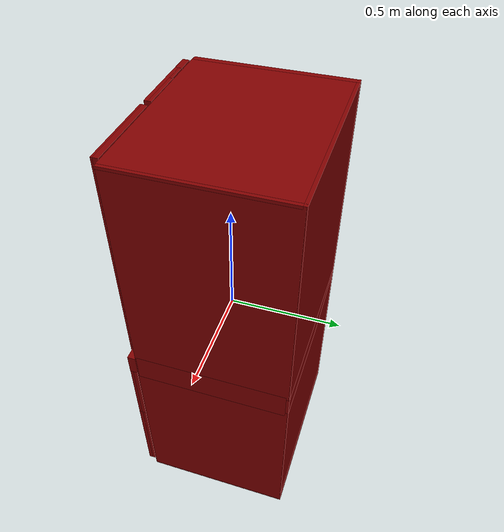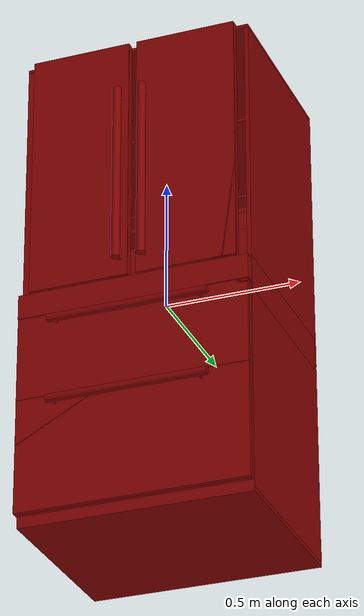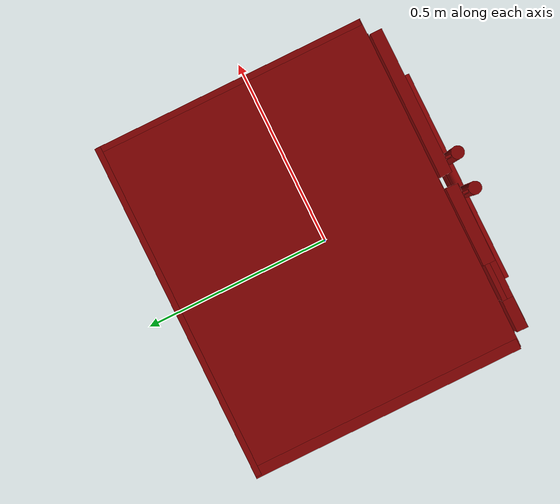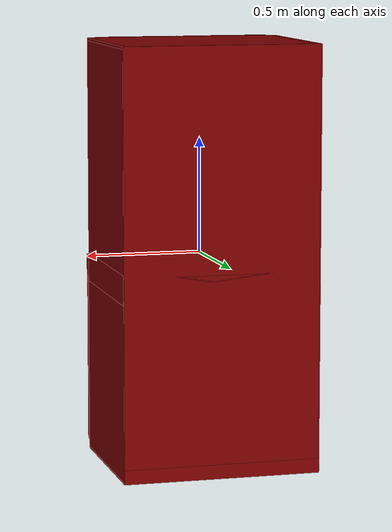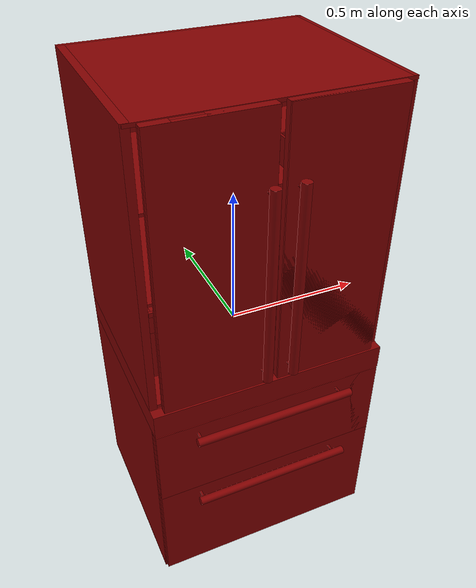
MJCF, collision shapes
<?xml version='1.0' encoding='UTF-8'?>
<mujoco model="model">
  <option timestep="0.002" gravity="0.0 0.0 -9.81"/>
  <compiler angle="radian"/>
  <asset>
    <mesh file="visuals/freezer0.obj" name="freezer0_vis"/>
    <mesh file="visuals/freezer1.obj" name="freezer1_vis"/>
    <mesh file="visuals/fridge_drawer0.obj" name="fridge_drawer0_vis"/>
    <mesh file="visuals/fridge_left_door.obj" name="fridge_left_door_vis"/>
    <mesh file="visuals/fridge_left_door_Clear.obj" name="fridge_left_door_Clear_vis"/>
    <mesh file="visuals/fridge_right_door.obj" name="fridge_right_door_vis"/>
    <mesh file="visuals/fridge_right_door_Clear.obj" name="fridge_right_door_Clear_vis"/>
    <mesh file="visuals/Body001.obj" name="Body001_vis"/>
    <mesh file="visuals/Body001_Clear.obj" name="Body001_Clear_vis"/>
    <texture file="visuals/T_BC001.png" name="Body001_material" type="2d"/>
    <material name="Body001_material" rgba="1 1 1 1.0" texture="Body001_material" shininess="0.8276031911373138" specular="0.5"/>
    <texture file="visuals/T_BC001.png" name="freezer0_material" type="2d"/>
    <material name="freezer0_material" rgba="1 1 1 1.0" texture="freezer0_material" shininess="0.8276031911373138" specular="0.3103448502657381"/>
    <texture file="visuals/T_BC001.png" name="freezer1_material" type="2d"/>
    <material name="freezer1_material" rgba="1 1 1 1.0" texture="freezer1_material" shininess="0.8276031911373138" specular="0.3103448502657381"/>
    <texture file="visuals/T_BC001.png" name="fridge_drawer0_material" type="2d"/>
    <material name="fridge_drawer0_material" rgba="1 1 1 1.0" texture="fridge_drawer0_material" shininess="0.8276031911373138" specular="0.3103448502657381"/>
    <texture file="visuals/T_BC001.png" name="fridge_left_door_material" type="2d"/>
    <material name="fridge_left_door_material" rgba="1 1 1 1.0" texture="fridge_left_door_material" shininess="0.8276031911373138" specular="0.5"/>
    <texture file="visuals/T_BC001.png" name="fridge_left_door_Clear_material" type="2d"/>
    <material name="fridge_left_door_Clear_material" rgba="1 1 1 0.2879999876022339" texture="fridge_left_door_Clear_material" shininess="0.5" specular="0.3103448502657381"/>
    <texture file="visuals/T_BC001.png" name="fridge_right_door_material" type="2d"/>
    <material name="fridge_right_door_material" rgba="1 1 1 1.0" texture="fridge_right_door_material" shininess="0.8276031911373138" specular="0.5"/>
    <texture file="visuals/T_BC001.png" name="fridge_right_door_Clear_material" type="2d"/>
    <material name="fridge_right_door_Clear_material" rgba="1 1 1 0.2879999876022339" texture="fridge_right_door_Clear_material" shininess="0.5" specular="0.3103448502657381"/>
    <texture file="visuals/T_BC001.png" name="Body001_Clear_material" type="2d"/>
    <material name="Body001_Clear_material" rgba="1 1 1 0.2879999876022339" texture="Body001_Clear_material" shininess="0.5" specular="0.3103448502657381"/>
  </asset>
  <default>
    <default class="visual">
      <geom conaffinity="0" contype="0" group="1" type="mesh"/>
    </default>
    <default class="collision">
      <geom group="0" rgba="0.5 0 0 0.5"/>
    </default>
    <default class="spawn">
      <geom group="0" rgba="1 1 1 0.5" contype="0" conaffinity="0"/>
      <site group="0" rgba="1 1 1 0.5"/>
    </default>
    <default class="region">
      <geom group="1" conaffinity="0" contype="0" rgba="0 1 0 0"/>
    </default>
  </default>
  <worldbody>
    <body>
      <body name="object">
        <geom mesh="Body001_vis" type="mesh" solimp="0.998 0.998 0.001" solref="0.001 1" friction="0.95 0.3 0.1" class="visual" material="Body001_material"/>
        <geom class="collision" type="box" pos="0.00209404 0.38322134 0.01577243" size="0.4255010485649109 0.007235266733914614 0.902708888053894" quat="1.0 0.0 0.0 0.0"/>
        <geom class="collision" type="box" pos="-0.41488200 0.04720822 0.00317960" size="0.013278201222419739 0.3432483673095703 0.9153016209602356" quat="1.0 0.0 0.0 0.0"/>
        <geom class="collision" type="box" pos="0.42073298 0.04515436 0.00316708" size="0.007427399978041649 0.3413979113101959 0.9153141975402832" quat="1.0 0.0 0.0 0.0"/>
        <geom class="collision" type="box" pos="0.00234738 0.03892795 0.91263694" size="0.42582303285598755 0.33744537830352783 0.005843969993293285" quat="1.0 0.0 0.0 0.0"/>
        <geom class="collision" type="box" pos="0.00851423 0.09890911 0.59902085" size="0.41042831540107727 0.2774127125740051 0.005448679439723492" quat="1.0 0.0 0.0 0.0"/>
        <geom class="collision" type="box" pos="0.00774531 0.09890905 0.28247998" size="0.41171011328697205 0.2774127423763275 0.0054486095905303955" quat="1.0 0.0 0.0 0.0"/>
        <geom class="collision" type="box" pos="0.00235057 0.04184989 -0.09310286" size="0.42581942677497864 0.33451831340789795 0.0636359453201294" quat="1.0 0.0 0.0 0.0"/>
        <geom class="collision" type="box" pos="0.00000013 0.02839998 -0.08866017" size="0.42816030979156494 0.3620566725730896 0.04623980447649956" quat="1.0 0.0 0.0 0.0"/>
        <geom class="collision" type="box" pos="-0.38684493 0.03445360 -0.25785556" size="0.021264592185616493 0.27595773339271545 0.004595370031893253" quat="1.0 0.0 0.0 0.0"/>
        <geom class="collision" type="box" pos="-0.38684493 0.03445358 -0.58969050" size="0.021264592185616493 0.2759576141834259 0.004595387261360884" quat="1.0 0.0 0.0 0.0"/>
        <geom class="collision" type="box" pos="0.39255250 0.03445357 -0.25785556" size="0.021264592185616493 0.27595749497413635 0.004595404025167227" quat="1.0 0.0 0.0 0.0"/>
        <geom class="collision" type="box" pos="0.39255250 0.03445360 -0.58946180" size="0.021264592185616493 0.2759574055671692 0.004824158735573292" quat="1.0 0.0 0.0 0.0"/>
        <geom class="collision" type="box" pos="0.00021380 0.04666487 -0.88714420" size="0.42794644832611084 0.3437919020652771 0.031325992196798325" quat="1.0 0.0 0.0 0.0"/>
        <geom class="collision" type="box" pos="0.00235609 0.03961269 -0.08866007" size="0.4258127808570862 0.3367463946342468 0.04624028876423836" quat="1.0 0.0 0.0 0.0"/>
        <body name="freezer0">
          <geom class="region" name="reg_freezer0" type="box" pos="0.0019675949999999887 0.03400876500000001 -0.669905175" size="0.291497585 0.27770337500000003 0.117826235"/>
          <joint axis="0.0 -1.0 0.0" pos="0.00013149 -0.02167906 -0.66472196" limited="true" name="freezer0_door_joint" range="0.0 0.5" type="slide" damping="1" frictionloss="1" armature=".01" stiffness="0.05"/>
          <geom mesh="freezer0_vis" type="mesh" solimp="0.998 0.998 0.001" solref="0.001 1" friction="0.95 0.3 0.1" class="visual" material="freezer0_material"/>
          <geom class="collision" type="box" pos="0.00007205 -0.31786283 -0.66655325" size="0.4266375005245209 0.01579381711781025 0.21225886046886444" quat="1.0 0.0 0.0 0.0"/>
          <geom class="collision" type="box" pos="0.00139456 -0.28475057 -0.67201941" size="0.3763910233974457 0.00999400857836008 0.17610913515090942" quat="1.0 0.0 0.0 0.0"/>
          <geom class="collision" type="box" pos="0.00214589 0.33212675 -0.68471061" size="0.32801109552383423 0.012254095636308193 0.138435959815979" quat="1.0 0.0 0.0 0.0"/>
          <geom class="collision" type="box" pos="-0.33073261 0.03453123 -0.56307279" size="0.032920826226472855 0.3103441298007965 0.01619304157793522" quat="1.0 0.0 0.0 0.0"/>
          <geom class="collision" type="box" pos="0.33386949 0.03453123 -0.56307285" size="0.033328983932733536 0.3103441298007965 0.016192829236388206" quat="1.0 0.0 0.0 0.0"/>
          <geom class="collision" type="box" pos="0.32493401 0.03453122 -0.68691426" size="0.023701008409261703 0.3103441298007965 0.10926515609025955" quat="1.0 0.0 0.0 0.0"/>
          <geom class="collision" type="box" pos="-0.32092553 0.03453122 -0.67684894" size="0.02445262484252453 0.3103441298007965 0.11980981379747391" quat="1.0 0.0 0.0 0.0"/>
          <geom class="collision" type="box" pos="-0.02193163 -0.26317882 -0.67248487" size="0.32325467467308044 0.0122462073341012 0.14743882417678833" quat="1.0 0.0 0.0 0.0"/>
          <geom class="collision" type="box" pos="0.00149272 0.03390422 -0.80943846" size="0.32814446091651917 0.3104744255542755 0.013698695227503777" quat="1.0 0.0 0.0 0.0"/>
          <geom class="collision" type="cylinder" pos="-0.00160723 -0.37345754 -0.48580470" size="0.014763685874640942 0.2946333885192871" quat="0.7071068286895752 -0.0 0.7071067690849304 0.0" name="freezer0_door_handle_main"/>
          <geom class="collision" type="cylinder" pos="-0.27833098 -0.34790211 -0.48769971" size="0.004080971237272024 0.014836380258202553" quat="0.7071068286895752 0.7071067690849304 0.0 0.0" name="freezer0_door_handle_1"/>
          <geom class="collision" type="cylinder" pos="0.25619841 -0.34812783 -0.48786145" size="0.004080971237272024 0.014836380258202553" quat="0.7071068286895752 0.7071067690849304 0.0 0.0" name="freezer0_door_handle_2"/>
          <geom class="collision" type="box" pos="0.00007205 -0.32529076 -0.66655325" size="0.4266432821750641 0.00836600549519062 0.21226069331169128" quat="1.0 0.0 0.0 0.0" name="freezer0_door_main"/>
        </body>
        <body name="freezer1">
          <geom class="region" name="reg_freezer1" type="box" pos="0.0019675949999999887 0.03400876500000001 -0.30439927499999997" size="0.291497585 0.27770337500000003 0.083944455"/>
          <joint axis="0.0 -1.0 0.0" pos="0.00013132 -0.02167906 -0.29443761" limited="true" name="freezer1_door_joint" range="0.0 0.5" type="slide" damping="1" frictionloss="1" armature=".01" stiffness="0.05"/>
          <geom mesh="freezer1_vis" type="mesh" solimp="0.998 0.998 0.001" solref="0.001 1" friction="0.95 0.3 0.1" class="visual" material="freezer1_material"/>
          <geom class="collision" type="box" pos="-0.00005701 -0.31786253 -0.29567125" size="0.4268110394477844 0.015794236212968826 0.15702089667320251" quat="1.0 0.0 0.0 0.0"/>
          <geom class="collision" type="box" pos="0.00139456 -0.28475057 -0.30014598" size="0.3763910233974457 0.00999400857836008 0.1337537169456482" quat="1.0 0.0 0.0 0.0"/>
          <geom class="collision" type="box" pos="-0.02193163 0.33212669 -0.30647644" size="0.32325467467308044 0.012254060246050358 0.09206433594226837" quat="1.0 0.0 0.0 0.0"/>
          <geom class="collision" type="box" pos="-0.33073273 0.03453123 -0.23133355" size="0.03292093798518181 0.3103441298007965 0.016193004325032234" quat="1.0 0.0 0.0 0.0"/>
          <geom class="collision" type="box" pos="0.33386940 0.03453123 -0.23133346" size="0.03332890570163727 0.3103441298007965 0.016192786395549774" quat="1.0 0.0 0.0 0.0"/>
          <geom class="collision" type="box" pos="0.32494429 0.03453122 -0.32260495" size="0.02347595803439617 0.3103441298007965 0.0761997401714325" quat="1.0 0.0 0.0 0.0"/>
          <geom class="collision" type="box" pos="-0.32164931 0.03453122 -0.32252955" size="0.023728851228952408 0.3103441298007965 0.07612433284521103" quat="1.0 0.0 0.0 0.0"/>
          <geom class="collision" type="box" pos="-0.02193163 -0.26317882 -0.30647644" size="0.32325467467308044 0.0122462073341012 0.09206433594226837" quat="1.0 0.0 0.0 0.0"/>
          <geom class="collision" type="box" pos="0.00154104 0.03390757 -0.41048028" size="0.32808899879455566 0.31047046184539795 0.014378750696778297" quat="1.0 0.0 0.0 0.0"/>
          <geom class="collision" type="cylinder" pos="-0.27833098 -0.34789019 -0.17486479" size="0.004080971237272024 0.014836380258202553" quat="0.7071068286895752 0.7071067690849304 0.0 0.0" name="freezer1_door_handle_1"/>
          <geom class="collision" type="cylinder" pos="0.25619841 -0.34796079 -0.17486479" size="0.004080971237272024 0.014836380258202553" quat="0.7071068286895752 0.7071067690849304 0.0 0.0" name="freezer1_door_handle_2"/>
          <geom class="collision" type="cylinder" pos="-0.00160723 -0.37345754 -0.17529262" size="0.014763685874640942 0.2946333885192871" quat="0.7071068286895752 -0.0 0.7071067690849304 0.0" name="freezer1_door_handle_main"/>
          <geom class="collision" type="box" pos="-0.00005701 -0.32725378 -0.29567125" size="0.42681798338890076 0.006402987986803055 0.1570231318473816" quat="1.0 0.0 0.0 0.0" name="freezer1_door_main"/>
        </body>
        <body name="fridge_drawer0">
          <geom class="region" name="reg_fridge_drawer0" type="box" pos="0.013046130000000017 0.10200007 0.111323845" size="0.36215644999999996 0.24400423 0.12311760499999999"/>
          <joint axis="0.0 -1.0 0.0" pos="0.01215402 0.09903535 0.10784212" limited="true" name="fridge_drawer0_joint" range="0.0 0.5" type="slide" damping="1" frictionloss="1" armature=".01" stiffness="0.05"/>
          <geom mesh="fridge_drawer0_vis" type="mesh" solimp="0.998 0.998 0.001" solref="0.001 1" friction="0.95 0.3 0.1" class="visual" material="fridge_drawer0_material"/>
          <geom class="collision" type="box" pos="0.36099902 -0.16096665 0.19847540" size="0.030655866488814354 0.004229236394166946 0.04130983352661133" quat="1.0 0.0 0.0 0.0"/>
          <geom class="collision" type="box" pos="-0.33496001 -0.16096662 0.19847540" size="0.03326001018285751 0.004229261539876461 0.04130994528532028" quat="1.0 0.0 0.0 0.0"/>
          <geom class="collision" type="box" pos="0.01171760 -0.16096665 0.06714342" size="0.3795023560523987 0.004229259677231312 0.09351187944412231" quat="1.0 0.0 0.0 0.0"/>
          <geom class="collision" type="box" pos="0.01279364 -0.16174074 0.23408661" size="0.3787553012371063 0.005003170110285282 0.00878092460334301" quat="1.0 0.0 0.0 0.0"/>
          <geom class="collision" type="box" pos="-0.36247855 0.10367085 0.10938761" size="0.005487510468810797 0.26028087735176086 0.13347309827804565" quat="1.0 0.0 0.0 0.0"/>
          <geom class="collision" type="box" pos="0.38753429 0.10298224 0.10938761" size="0.004412728827446699 0.2601720988750458 0.1334730088710785" quat="1.0 0.0 0.0 0.0"/>
          <geom class="collision" type="box" pos="0.01160441 0.10286673 -0.02255329" size="0.37965017557144165 0.25998014211654663 0.004402667284011841" quat="1.0 0.0 0.0 0.0"/>
          <geom class="collision" type="box" pos="0.01333409 0.35958890 0.10835097" size="0.3792940378189087 0.0046245441772043705 0.13243620097637177" quat="1.0 0.0 0.0 0.0"/>
        </body>
        <body name="fridge_left_door">
          <joint axis="0.0 0.0 -1.0" pos="-0.40841827 -0.31647562 0.48872218" limited="true" name="fridge_left_door_joint" range="0.0 1.5707963267948966" type="hinge" damping="1" frictionloss="1" armature=".01" stiffness="0.05"/>
          <geom mesh="fridge_left_door_vis" type="mesh" solimp="0.998 0.998 0.001" solref="0.001 1" friction="0.95 0.3 0.1" class="visual" material="fridge_left_door_material"/>
          <geom class="collision" type="box" pos="-0.34973997 -0.31935235 0.44184566" size="0.039864156395196915 0.014084827154874802 0.47649359703063965" quat="1.0 0.0 0.0 0.0"/>
          <geom class="collision" type="box" pos="-0.11627309 -0.31819220 0.44190476" size="0.10008827596902847 0.015244950540363789 0.4764341711997986" quat="1.0 0.0 0.0 0.0"/>
          <geom class="collision" type="box" pos="-0.26371098 -0.31782960 0.22559942" size="0.04796658828854561 0.015605823136866093 0.2602473497390747" quat="1.0 0.0 0.0 0.0"/>
          <geom class="collision" type="box" pos="-0.26371098 -0.31543617 0.70232726" size="0.04796670749783516 0.009254158474504948 0.21574071049690247" quat="1.0 0.0 0.0 0.0"/>
          <geom class="collision" type="cylinder" pos="-0.04533842 -0.37464397 0.36213148" size="0.016492286697030067 0.3457251191139221" quat="1.0 0.0 0.0 0.0" name="fridge_left_door_handle_main"/>
          <geom class="collision" type="cylinder" pos="-0.04523656 -0.34812202 0.67868704" size="0.004023279063403606 0.015247500501573086" quat="0.7071068286895752 0.7071067690849304 0.0 0.0" name="fridge_left_door_handle_1"/>
          <geom class="collision" type="cylinder" pos="-0.04523656 -0.34812202 0.02836289" size="0.004023279063403606 0.015247500501573086" quat="0.7071068286895752 0.7071067690849304 0.0 0.0" name="fridge_left_door_handle_2"/>
          <geom class="collision" type="box" pos="-0.34478024 -0.24124837 0.35693718" size="0.0033341876696795225 0.0558089017868042 0.0454571507871151" quat="1.0 0.0 0.0 0.0"/>
          <geom class="collision" type="box" pos="-0.20288655 -0.18605538 0.72629643" size="0.14040397107601166 0.003358282148838043 0.04427378997206688" quat="1.0 0.0 0.0 0.0"/>
          <geom class="collision" type="box" pos="-0.20288633 -0.29650440 0.72015799" size="0.14043399691581726 0.001194413285702467 0.04829682037234306" quat="1.0 0.0 0.0 0.0"/>
          <geom class="collision" type="box" pos="-0.06261712 -0.24093748 0.72629631" size="0.003761481959372759 0.055808428674936295 0.044276535511016846" quat="1.0 0.0 0.0 0.0"/>
          <geom class="collision" type="box" pos="-0.34515199 -0.24124837 0.72629631" size="0.003705924842506647 0.05580850690603256 0.04427661746740341" quat="1.0 0.0 0.0 0.0"/>
          <geom class="collision" type="box" pos="-0.20288657 -0.24163461 0.30997474" size="0.14043420553207397 0.05600184574723244 0.0028280571568757296" quat="1.0 0.0 0.0 0.0"/>
          <geom class="collision" type="box" pos="-0.20288631 -0.18605538 0.35693712" size="0.14040951430797577 0.003358383197337389 0.04545513167977333" quat="1.0 0.0 0.0 0.0"/>
          <geom class="collision" type="box" pos="-0.20288657 -0.29650440 0.35977031" size="0.1404343545436859 0.0011944229481741786 0.04829598218202591" quat="1.0 0.0 0.0 0.0"/>
          <geom class="collision" type="box" pos="-0.20288633 -0.24163458 0.68051446" size="0.140432670712471 0.0560014583170414 0.0028280692640691996" quat="1.0 0.0 0.0 0.0"/>
          <geom class="collision" type="box" pos="-0.06261712 -0.24093748 0.35693718" size="0.0037614996545016766 0.05580882355570793 0.04545747488737106" quat="1.0 0.0 0.0 0.0"/>
          <geom class="collision" type="box" pos="-0.20331898 -0.32637169 0.44190476" size="0.18657821416854858 0.007857249118387699 0.4764341711997986" quat="1.0 0.0 0.0 0.0" name="fridge_left_door_main"/>
          <body name="fridge_left_door_Clear">
            <geom mesh="fridge_left_door_Clear_vis" type="mesh" solimp="0.998 0.998 0.001" solref="0.001 1" friction="0.95 0.3 0.1" class="visual" material="fridge_left_door_Clear_material"/>
            <geom class="collision" type="box" pos="-0.34478024 -0.24124837 0.35693718" size="0.0033341876696795225 0.0558089017868042 0.0454571507871151" quat="1.0 0.0 0.0 0.0"/>
            <geom class="collision" type="box" pos="-0.20288655 -0.18605538 0.72629643" size="0.14040397107601166 0.003358282148838043 0.04427378997206688" quat="1.0 0.0 0.0 0.0"/>
            <geom class="collision" type="box" pos="-0.20288633 -0.29650440 0.72015799" size="0.14043399691581726 0.001194413285702467 0.04829682037234306" quat="1.0 0.0 0.0 0.0"/>
            <geom class="collision" type="box" pos="-0.06261712 -0.24093748 0.72629631" size="0.003761481959372759 0.055808428674936295 0.044276535511016846" quat="1.0 0.0 0.0 0.0"/>
            <geom class="collision" type="box" pos="-0.34515199 -0.24124837 0.72629631" size="0.003705924842506647 0.05580850690603256 0.04427661746740341" quat="1.0 0.0 0.0 0.0"/>
            <geom class="collision" type="box" pos="-0.20288657 -0.24163461 0.30997474" size="0.14043420553207397 0.05600184574723244 0.0028280571568757296" quat="1.0 0.0 0.0 0.0"/>
            <geom class="collision" type="box" pos="-0.20288631 -0.18605538 0.35693712" size="0.14040951430797577 0.003358383197337389 0.04545513167977333" quat="1.0 0.0 0.0 0.0"/>
            <geom class="collision" type="box" pos="-0.20288657 -0.29650440 0.35977031" size="0.1404343545436859 0.0011944229481741786 0.04829598218202591" quat="1.0 0.0 0.0 0.0"/>
            <geom class="collision" type="box" pos="-0.20288633 -0.24163458 0.68051446" size="0.140432670712471 0.0560014583170414 0.0028280692640691996" quat="1.0 0.0 0.0 0.0"/>
            <geom class="collision" type="box" pos="-0.06261712 -0.24093748 0.35693718" size="0.0037614996545016766 0.05580882355570793 0.04545747488737106" quat="1.0 0.0 0.0 0.0"/>
          </body>
        </body>
        <body name="fridge_right_door">
          <joint axis="0.0 0.0 1.0" pos="0.40970930 -0.31647562 0.48872218" limited="true" name="fridge_right_door_joint" range="0.0 1.5707963267948966" type="hinge" damping="1" frictionloss="1" armature=".01" stiffness="0.05"/>
          <geom mesh="fridge_right_door_vis" type="mesh" solimp="0.998 0.998 0.001" solref="0.001 1" friction="0.95 0.3 0.1" class="visual" material="fridge_right_door_material"/>
          <geom class="collision" type="cylinder" pos="0.04875666 -0.37473979 0.36213145" size="0.01653287559747696 0.3464663028717041" quat="1.0 0.0 0.0 0.0" name="fridge_right_door_handle_main"/>
          <geom class="collision" type="cylinder" pos="0.04885852 -0.34812202 0.67889345" size="0.004023279063403606 0.015247500501573086" quat="0.7071068286895752 0.7071067690849304 0.0 0.0" name="fridge_right_door_handle_1"/>
          <geom class="collision" type="cylinder" pos="0.04861910 -0.34812202 0.02820406" size="0.004023279063403606 0.015247500501573086" quat="0.7071068286895752 0.7071067690849304 0.0 0.0" name="fridge_right_door_handle_2"/>
          <geom class="collision" type="box" pos="0.19910870 -0.31916289 0.44184566" size="0.18608887493610382 0.015066045336425304 0.47649237513542175" quat="1.0 0.0 0.0 0.0"/>
          <geom class="collision" type="box" pos="0.20202333 -0.29650440 0.35977031" size="0.1399555206298828 0.0011944229481741786 0.048295676708221436" quat="1.0 0.0 0.0 0.0"/>
          <geom class="collision" type="box" pos="0.20202358 -0.18605538 0.35693712" size="0.1399320662021637 0.0033584197517484426 0.04545560106635094" quat="1.0 0.0 0.0 0.0"/>
          <geom class="collision" type="box" pos="0.20202333 -0.24163461 0.30997474" size="0.13995479047298431 0.05600184574723244 0.0028280175756663084" quat="1.0 0.0 0.0 0.0"/>
          <geom class="collision" type="box" pos="0.06023619 -0.24124837 0.72629631" size="0.003705924842506647 0.05580850690603256 0.044277019798755646" quat="1.0 0.0 0.0 0.0"/>
          <geom class="collision" type="box" pos="0.34181449 -0.24093748 0.72629631" size="0.003761481959372759 0.055808428674936295 0.04427701234817505" quat="1.0 0.0 0.0 0.0"/>
          <geom class="collision" type="box" pos="0.20202357 -0.29650440 0.72015799" size="0.13995368778705597 0.001194413285702467 0.048295699059963226" quat="1.0 0.0 0.0 0.0"/>
          <geom class="collision" type="box" pos="0.20202334 -0.18605538 0.72629631" size="0.13992801308631897 0.0033583820331841707 0.04427504912018776" quat="1.0 0.0 0.0 0.0"/>
          <geom class="collision" type="box" pos="0.06060794 -0.24124837 0.35693718" size="0.0033341876696795225 0.0558089017868042 0.0454578772187233" quat="1.0 0.0 0.0 0.0"/>
          <geom class="collision" type="box" pos="0.20202357 -0.24163458 0.68051446" size="0.13995279371738434 0.0560014583170414 0.002828014548867941" quat="1.0 0.0 0.0 0.0"/>
          <geom class="collision" type="box" pos="0.19917873 -0.33055698 0.44184566" size="0.18616198003292084 0.0036719536874443293 0.47649237513542175" quat="1.0 0.0 0.0 0.0" name="fridge_right_door_main"/>
          <geom class="collision" type="box" pos="0.34235224 -0.24093748 0.35657070" size="0.003761481959372759 0.055808428674936295 0.04427667334675789" quat="1.0 0.0 0.0 0.0"/>
          <body name="fridge_right_door_Clear">
            <geom mesh="fridge_right_door_Clear_vis" type="mesh" solimp="0.998 0.998 0.001" solref="0.001 1" friction="0.95 0.3 0.1" class="visual" material="fridge_right_door_Clear_material"/>
            <geom class="collision" type="box" pos="0.20202333 -0.29650440 0.35977031" size="0.1399555206298828 0.0011944229481741786 0.048295676708221436" quat="1.0 0.0 0.0 0.0"/>
            <geom class="collision" type="box" pos="0.20202358 -0.18605538 0.35693712" size="0.1399320662021637 0.0033584197517484426 0.04545560106635094" quat="1.0 0.0 0.0 0.0"/>
            <geom class="collision" type="box" pos="0.20202333 -0.24163461 0.30997474" size="0.13995479047298431 0.05600184574723244 0.0028280175756663084" quat="1.0 0.0 0.0 0.0"/>
            <geom class="collision" type="box" pos="0.06023619 -0.24124837 0.72629631" size="0.003705924842506647 0.05580850690603256 0.044277019798755646" quat="1.0 0.0 0.0 0.0"/>
            <geom class="collision" type="box" pos="0.34181449 -0.24093748 0.72629631" size="0.003761481959372759 0.055808428674936295 0.04427701234817505" quat="1.0 0.0 0.0 0.0"/>
            <geom class="collision" type="box" pos="0.20202357 -0.29650440 0.72015799" size="0.13995368778705597 0.001194413285702467 0.048295699059963226" quat="1.0 0.0 0.0 0.0"/>
            <geom class="collision" type="box" pos="0.20202334 -0.18605538 0.72629631" size="0.13992801308631897 0.0033583820331841707 0.04427504912018776" quat="1.0 0.0 0.0 0.0"/>
            <geom class="collision" type="box" pos="0.06060794 -0.24124837 0.35693718" size="0.0033341876696795225 0.0558089017868042 0.0454578772187233" quat="1.0 0.0 0.0 0.0"/>
            <geom class="collision" type="box" pos="0.20202357 -0.24163458 0.68051446" size="0.13995279371738434 0.0560014583170414 0.002828014548867941" quat="1.0 0.0 0.0 0.0"/>
            <geom class="collision" type="box" pos="0.34235224 -0.24093748 0.35657070" size="0.003761481959372759 0.055808428674936295 0.04427667334675789" quat="1.0 0.0 0.0 0.0"/>
          </body>
        </body>
        <body name="Body001_Clear">
          <geom mesh="Body001_Clear_vis" type="mesh" solimp="0.998 0.998 0.001" solref="0.001 1" friction="0.95 0.3 0.1" class="visual" material="Body001_Clear_material"/>
          <geom class="collision" type="box" pos="0.00851423 0.09890911 0.59902085" size="0.41042831540107727 0.2774127125740051 0.005448679439723492" quat="1.0 0.0 0.0 0.0"/>
          <geom class="collision" type="box" pos="0.00774531 0.09890905 0.28247998" size="0.41171011328697205 0.2774127423763275 0.0054486095905303955" quat="1.0 0.0 0.0 0.0"/>
        </body>
        <geom class="region" name="reg_fridge_shelf1" type="box" pos="0.005286230000000003 0.10566206000000002 0.75638423" size="0.40081897 0.25884093 0.14558284"/>
        <geom class="region" name="reg_fridge_shelf0" type="box" pos="0.005286230000000003 0.10587752500000001 0.44087413499999994" size="0.40081897 0.258378995 0.14649818499999998"/>
        <geom class="region" name="reg_main" type="box" pos="9.999999994736442e-09 0.028114135000000012 4.985000000012896e-06" size="0.42916037 0.36334265499999996 0.919476225"/>
      </body>
    </body>
  </worldbody>
  <actuator>
    <motor name="freezer0_door_joint_actuator" joint="freezer0_door_joint" gear="50"/>
    <motor name="freezer1_door_joint_actuator" joint="freezer1_door_joint" gear="50"/>
    <motor name="fridge_drawer0_joint_actuator" joint="fridge_drawer0_joint" gear="50"/>
    <motor name="fridge_left_door_joint_actuator" joint="fridge_left_door_joint" gear="50"/>
    <motor name="fridge_right_door_joint_actuator" joint="fridge_right_door_joint" gear="50"/>
  </actuator>
</mujoco>
